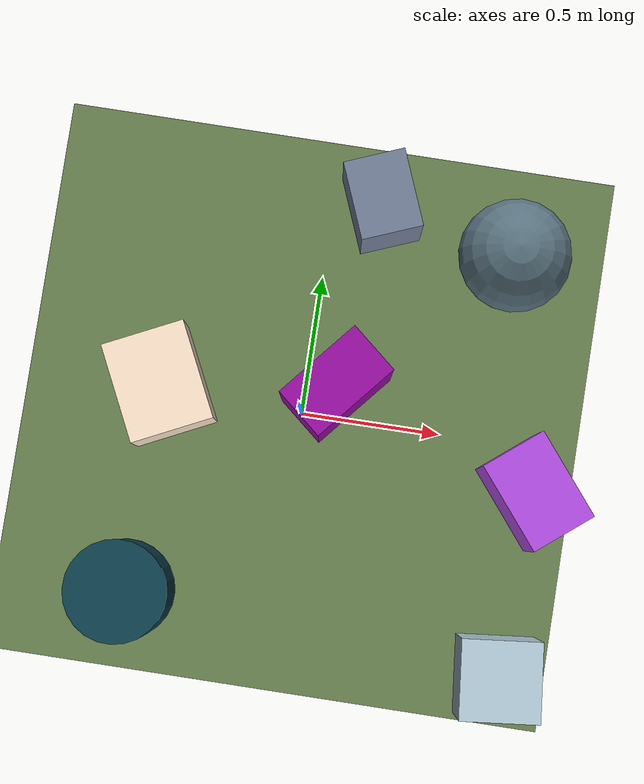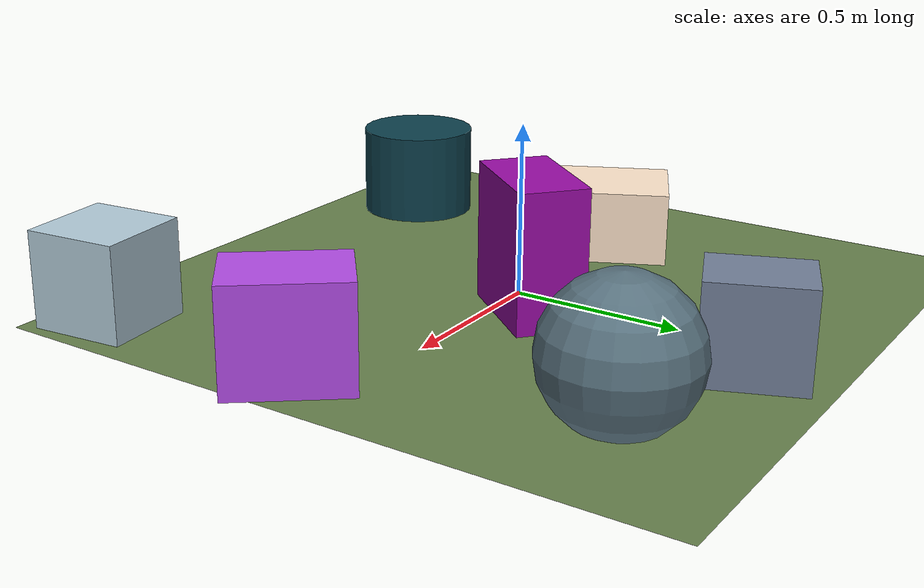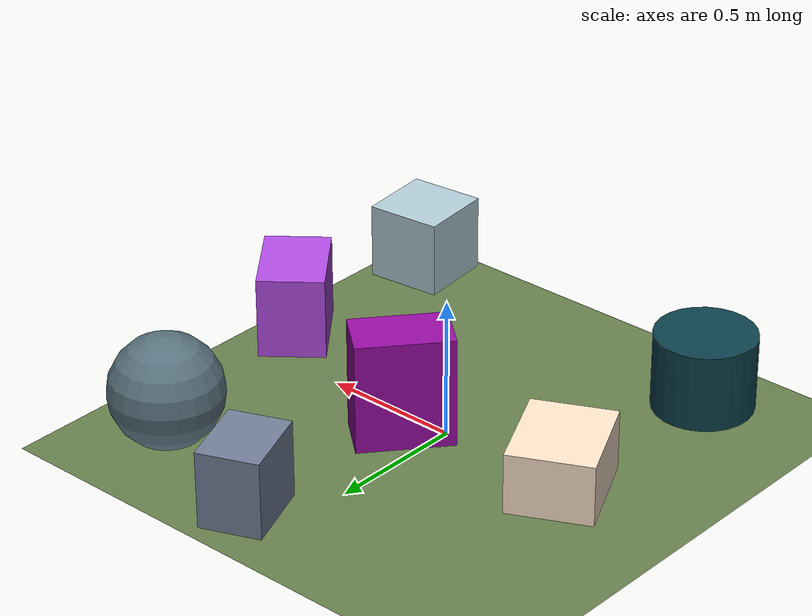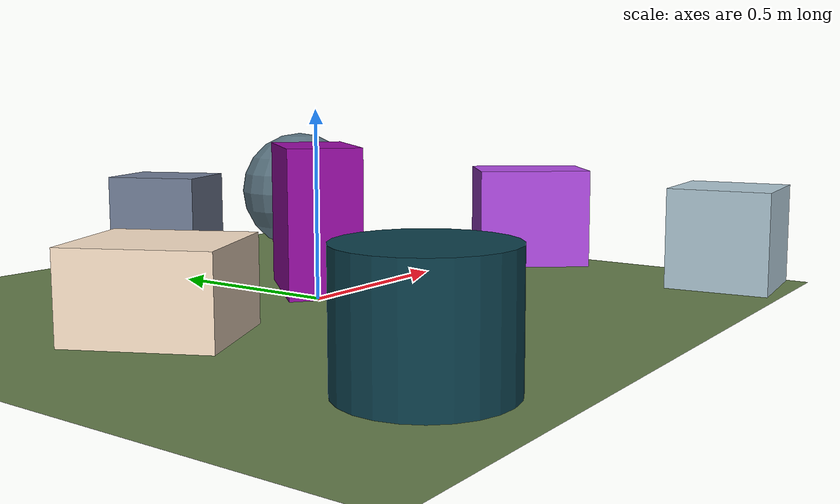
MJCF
<mujoco>
   <asset>
<texture type="skybox" builtin="gradient" rgb1="0.5 0.1 0.3" rgb2="0.3 1.0 0.5" width="256" height="256"/>
<texture name="gradient_0" builtin="gradient" rgb1="0.1 0.3 0.3" rgb2="0.0 0.2 0.3" width="200" height="200"/>
<texture name="gradient_1" builtin="gradient" rgb1="0.9 0.6 0.3" rgb2="0.0 0.4 0.9" width="200" height="200"/>
<texture name="flat_2" builtin="flat" rgb1="1.0 0.9 0.8" rgb2="1.0 0.9 0.8"  width="200" height="200"/>
<texture name="gradient_3" builtin="gradient" rgb1="0.3 0.5 0.2" rgb2="0.4 0.4 0.8" width="200" height="200"/>
<texture name="gradient_4" builtin="gradient" rgb1="0.3 0.1 0.5" rgb2="0.9 0.0 0.8" width="200" height="200"/>
<texture name="checker_5" builtin="checker" rgb1="0.7 0.6 0.9" rgb2="0.7 1.0 0.8" width="200" height="200"/>
<texture name="flat_6" builtin="flat" rgb1="0.7 0.3 0.9" rgb2="0.7 0.3 0.9"  width="200" height="200"/><material name="gradient_0_mat" reflectance="0" texture="gradient_0" texuniform="true"/>
<material name="gradient_1_mat" reflectance="0" texture="gradient_1" texuniform="true"/>
<material name="flat_2_mat" reflectance="0" texture="flat_2" texuniform="true"/>
<material name="gradient_3_mat" reflectance="0" texture="gradient_3" texuniform="true"/>
<material name="gradient_4_mat" reflectance="0" texture="gradient_4" texuniform="true"/>
<material name="checker_5_mat" reflectance="0" texrepeat="4 4" texture="checker_5" texuniform="false" />
<material name="flat_6_mat" reflectance="0" texture="flat_6" texuniform="true"/>
   </asset>

   <worldbody>
      <light diffuse=".9 .9 .9" pos="0 0 3" dir="0 0 -1"/>
     <geom type="plane" size="1 1 0.1" rgba="0.4 0.5 0.3 1"/>
<geom type="cylinder" pos="-0.53 -0.72 0.14" size="0.18 0.14 0.14" material="gradient_0_mat" euler="0 0 20" />
<geom type="box" pos="0.17 0.78 0.14" size="0.11 0.14 0.14" material="gradient_1_mat" euler="0 0 22" />
<geom type="box" pos="-0.51 0.02 0.11" size="0.15 0.18 0.11" material="flat_2_mat" euler="0 0 26" />
<geom type="sphere" pos="0.66 0.65 0.2" size="0.2 0.2 0.2" material="gradient_3_mat" euler="0 0 3" />
<geom type="box" pos="0.11 0.1 0.2" size="0.17 0.1 0.2" material="gradient_4_mat" euler="0 0 50" />
<geom type="box" pos="0.82 -0.82 0.14" size="0.14 0.14 0.14" material="checker_5_mat" euler="0 0 6" />
<geom type="box" pos="0.85 -0.16 0.15" size="0.12 0.17 0.15" material="flat_6_mat" euler="0 0 39" /><camera euler="60 0 180" fovy="60" name="camera1" pos="-0.2 -1.5 1"></camera>   </worldbody>
</mujoco>
